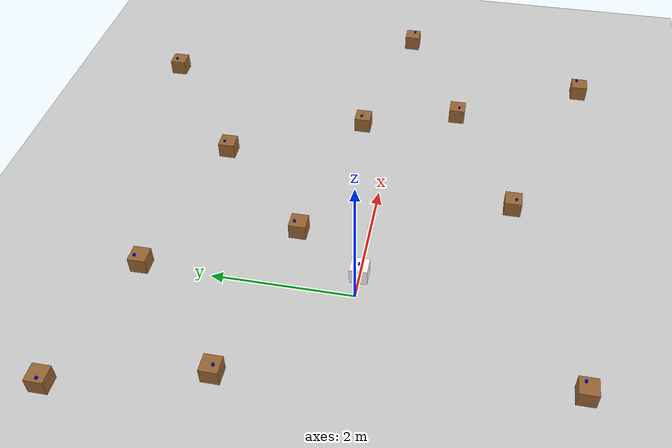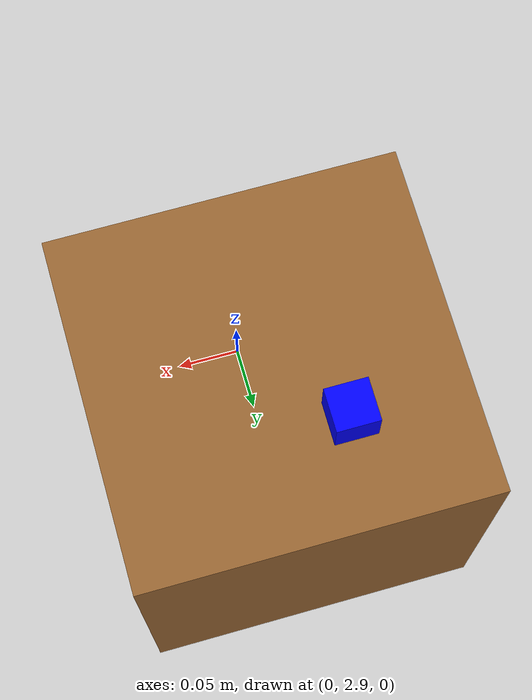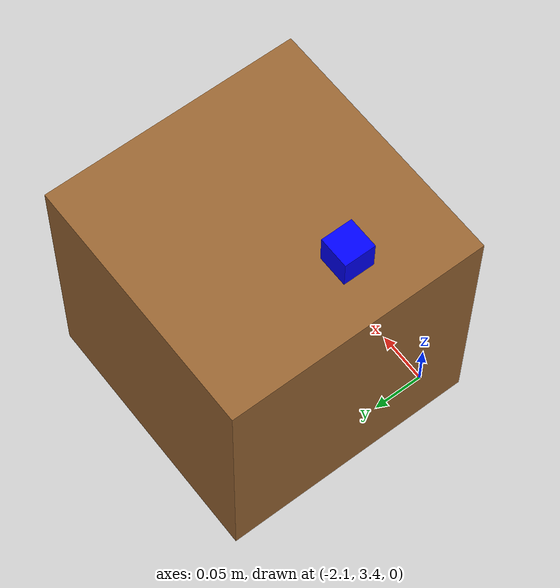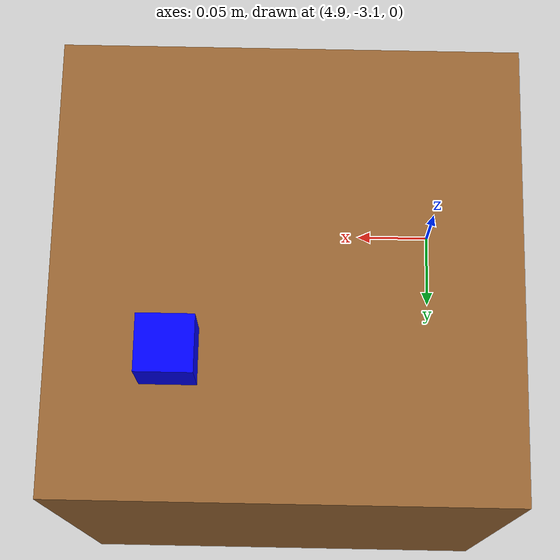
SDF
<sdf version="1.10">
 <world name="empty">
  <physics name="1ms" type="ignored">
   <max_step_size>0.001</max_step_size>
   <real_time_factor>1</real_time_factor>
   <real_time_update_rate>1000</real_time_update_rate>
  </physics>
  <plugin name="gz::sim::systems::Physics" filename="gz-sim-physics-system"/>
  <plugin name="gz::sim::systems::UserCommands" filename="gz-sim-user-commands-system"/>
  <plugin name="gz::sim::systems::SceneBroadcaster" filename="gz-sim-scene-broadcaster-system"/>
  <plugin name="gz::sim::systems::Contact" filename="gz-sim-contact-system"/>
  <plugin name="gz::sim::systems::Sensors" filename="gz-sim-sensors-system">
   <render_engine>ogre2</render_engine>
  </plugin>
  <plugin name="gz::sim::systems::Imu" filename="gz-sim-imu-system"/>
  <plugin name="gz::sim::systems::NavSat" filename="gz-sim-navsat-system"/>
  <spherical_coordinates>
   <surface_model>EARTH_WGS84</surface_model>
   <world_frame_orientation>ENU</world_frame_orientation>
   <latitude_deg>47.478949999999998</latitude_deg>
   <longitude_deg>19.057784999999999</longitude_deg>
   <elevation>0</elevation>
   <heading_deg>0</heading_deg>
  </spherical_coordinates>
  <gravity>0 0 -9.8000000000000007</gravity>
  <magnetic_field>5.5644999999999998e-06 2.2875799999999999e-05 -4.2388400000000002e-05</magnetic_field>
  <atmosphere type="adiabatic"/>
  <scene>
   <ambient>0.400000006 0.400000006 0.400000006 1</ambient>
   <background>0.699999988 0.699999988 0.699999988 1</background>
   <shadows>true</shadows>
  </scene>
  <model name="ground_plane">
   <static>true</static>
   <link name="link">
    <collision name="collision">
     <geometry><plane><normal>0 0 1</normal><size>100 100</size></plane></geometry>
     <surface><friction><ode><mu>50</mu></ode></friction></surface>
    </collision>
    <visual name="visual">
     <geometry><plane><normal>0 0 1</normal><size>100 100</size></plane></geometry>
     <material>
      <ambient>0.800000012 0.800000012 0.800000012 1</ambient>
      <diffuse>0.800000012 0.800000012 0.800000012 1</diffuse>
      <specular>0.800000012 0.800000012 0.800000012 1</specular>
     </material>
    </visual>
    <inertial>
     <mass>1</mass>
     <inertia><ixx>1</ixx><ixy>0</ixy><ixz>0</ixz><iyy>1</iyy><iyz>0</iyz><izz>1</izz></inertia>
    </inertial>
   </link>
  </model>
  <light name="sun" type="directional">
   <pose>0 0 10 0 0 0</pose>
   <intensity>1</intensity>
   <direction>-0.5 0.10000000000000001 -0.90000000000000002</direction>
   <diffuse>0.800000012 0.800000012 0.800000012 1</diffuse>
   <specular>0.200000003 0.200000003 0.200000003 1</specular>
   <attenuation>
    <range>1000</range>
    <linear>0.01</linear>
    <constant>0.90000000000000002</constant>
    <quadratic>0.001</quadratic>
   </attenuation>
   <spot><inner_angle>0</inner_angle><outer_angle>0</outer_angle><falloff>0</falloff></spot>
  </light>
  <model name="box_red">
   <pose>3.5 0.5 0.125 0 0 0</pose>
   <static>true</static>
   <link name="link">
    <collision name="collision"><geometry><box><size>0.25 0.25 0.25</size></box></geometry></collision>
    <visual name="visual">
     <geometry><box><size>0.25 0.25 0.25</size></box></geometry>
     <material>
      <ambient>0.6 0.4 0.2 1</ambient>
      <diffuse>0.6 0.4 0.2 1</diffuse>
      <specular>0.1 0.1 0.1 1</specular>
     </material>
    </visual>
   </link>
  </model>
  <model name="small_blue_1">
   <pose>3.46 0.52 0.265 0 0 0</pose>
   <static>false</static>
   <inertial>
    <mass>0.05</mass>
    <inertia>
     <ixx>0.0000075</ixx>
     <ixy>0</ixy>
     <ixz>0</ixz>
     <iyy>0.0000075</iyy>
     <iyz>0</iyz>
     <izz>0.0000075</izz>
    </inertia>
   </inertial>
   <link name="link">
    <collision name="collision"><geometry><box><size>0.03 0.03 0.03</size></box></geometry></collision>
    <visual name="visual">
     <geometry><box><size>0.03 0.03 0.03</size></box></geometry>
     <material><ambient>0 0 1 1</ambient><diffuse>0 0 1 1</diffuse><specular>0.1 0.1 0.1 1</specular></material>
    </visual>
   </link>
  </model>
  <model name="box_blue">
   <pose>0.0 3.0 0.125 0 0 0</pose>
   <static>true</static>
   <link name="link">
    <collision name="collision"><geometry><box><size>0.25 0.25 0.25</size></box></geometry></collision>
    <visual name="visual">
     <geometry><box><size>0.25 0.25 0.25</size></box></geometry>
     <material>
      <ambient>0.6 0.4 0.2 1</ambient>
      <diffuse>0.6 0.4 0.2 1</diffuse>
      <specular>0.1 0.1 0.1 1</specular>
     </material>
    </visual>
   </link>
  </model>
  <model name="box_yellow">
   <pose>5.0 -3.0 0.125 0 0 0</pose>
   <static>true</static>
   <link name="link">
    <collision name="collision"><geometry><box><size>0.25 0.25 0.25</size></box></geometry></collision>
    <visual name="visual">
     <geometry><box><size>0.25 0.25 0.25</size></box></geometry>
     <material>
      <ambient>0.6 0.4 0.2 1</ambient>
      <diffuse>0.6 0.4 0.2 1</diffuse>
      <specular>0.1 0.1 0.1 1</specular>
     </material>
    </visual>
   </link>
  </model>
  <model name="box_green">
   <pose>2.0 -2.0 0.125 0 0 0</pose>
   <static>true</static>
   <link name="link">
    <collision name="collision"><geometry><box><size>0.25 0.25 0.25</size></box></geometry></collision>
    <visual name="visual">
     <geometry><box><size>0.25 0.25 0.25</size></box></geometry>
     <material>
      <ambient>0.6 0.4 0.2 1</ambient>
      <diffuse>0.6 0.4 0.2 1</diffuse>
      <specular>0.1 0.1 0.1 1</specular>
     </material>
    </visual>
   </link>
  </model>
  <model name="box_purple">
   <pose>-1.5 1.5 0.125 0 0 0</pose>
   <static>true</static>
   <link name="link">
    <collision name="collision"><geometry><box><size>0.25 0.25 0.25</size></box></geometry></collision>
    <visual name="visual">
     <geometry><box><size>0.25 0.25 0.25</size></box></geometry>
     <material>
      <ambient>0.6 0.4 0.2 1</ambient>
      <diffuse>0.6 0.4 0.2 1</diffuse>
      <specular>0.1 0.1 0.1 1</specular>
     </material>
    </visual>
   </link>
  </model>
  <model name="box_cyan">
   <pose>4.5 4.0 0.125 0 0 0</pose>
   <static>true</static>
   <link name="link">
    <collision name="collision"><geometry><box><size>0.25 0.25 0.25</size></box></geometry></collision>
    <visual name="visual">
     <geometry><box><size>0.25 0.25 0.25</size></box></geometry>
     <material>
      <ambient>0.6 0.4 0.2 1</ambient>
      <diffuse>0.6 0.4 0.2 1</diffuse>
      <specular>0.1 0.1 0.1 1</specular>
     </material>
    </visual>
   </link>
  </model>
  <model name="box_red_2">
   <pose>1.0 1.0 0.125 0 0 0</pose>
   <static>true</static>
   <link name="link">
    <collision name="collision"><geometry><box><size>0.25 0.25 0.25</size></box></geometry></collision>
    <visual name="visual">
     <geometry><box><size>0.25 0.25 0.25</size></box></geometry>
     <material>
      <ambient>0.6 0.4 0.2 1</ambient>
      <diffuse>0.6 0.4 0.2 1</diffuse>
      <specular>0.1 0.1 0.1 1</specular>
     </material>
    </visual>
   </link>
  </model>
  <model name="box_red_3">
   <pose>4.0 -1.0 0.125 0 0 0</pose>
   <static>true</static>
   <link name="link">
    <collision name="collision"><geometry><box><size>0.25 0.25 0.25</size></box></geometry></collision>
    <visual name="visual">
     <geometry><box><size>0.25 0.25 0.25</size></box></geometry>
     <material>
      <ambient>0.6 0.4 0.2 1</ambient>
      <diffuse>0.6 0.4 0.2 1</diffuse>
      <specular>0.1 0.1 0.1 1</specular>
     </material>
    </visual>
   </link>
  </model>
  <model name="box_blue_2">
   <pose>-2.0 3.5 0.125 0 0 0</pose>
   <static>true</static>
   <link name="link">
    <collision name="collision"><geometry><box><size>0.25 0.25 0.25</size></box></geometry></collision>
    <visual name="visual">
     <geometry><box><size>0.25 0.25 0.25</size></box></geometry>
     <material>
      <ambient>0.6 0.4 0.2 1</ambient>
      <diffuse>0.6 0.4 0.2 1</diffuse>
      <specular>0.1 0.1 0.1 1</specular>
     </material>
    </visual>
   </link>
  </model>
  <model name="box_blue_3">
   <pose>-1.0 -3.0 0.125 0 0 0</pose>
   <static>true</static>
   <link name="link">
    <collision name="collision"><geometry><box><size>0.25 0.25 0.25</size></box></geometry></collision>
    <visual name="visual">
     <geometry><box><size>0.25 0.25 0.25</size></box></geometry>
     <material>
      <ambient>0.6 0.4 0.2 1</ambient>
      <diffuse>0.6 0.4 0.2 1</diffuse>
      <specular>0.1 0.1 0.1 1</specular>
     </material>
    </visual>
   </link>
  </model>
  <model name="box_yellow_2">
   <pose>6.0 0.0 0.125 0 0 0</pose>
   <static>true</static>
   <link name="link">
    <collision name="collision"><geometry><box><size>0.25 0.25 0.25</size></box></geometry></collision>
    <visual name="visual">
     <geometry><box><size>0.25 0.25 0.25</size></box></geometry>
     <material>
      <ambient>0.6 0.4 0.2 1</ambient>
      <diffuse>0.6 0.4 0.2 1</diffuse>
      <specular>0.1 0.1 0.1 1</specular>
     </material>
    </visual>
   </link>
  </model>
  <model name="box_yellow_3">
   <pose>2.5 2.5 0.125 0 0 0</pose>
   <static>true</static>
   <link name="link">
    <collision name="collision"><geometry><box><size>0.25 0.25 0.25</size></box></geometry></collision>
    <visual name="visual">
     <geometry><box><size>0.25 0.25 0.25</size></box></geometry>
     <material>
      <ambient>0.6 0.4 0.2 1</ambient>
      <diffuse>0.6 0.4 0.2 1</diffuse>
      <specular>0.1 0.1 0.1 1</specular>
     </material>
    </visual>
   </link>
  </model>
  <model name="small_yellow_2">
   <pose>-0.04 3.05 0.265 0 0 0</pose>
   <static>false</static>
   <inertial>
    <mass>0.05</mass>
    <inertia>
     <ixx>0.0000075</ixx>
     <ixy>0</ixy>
     <ixz>0</ixz>
     <iyy>0.0000075</iyy>
     <iyz>0</iyz>
     <izz>0.0000075</izz>
    </inertia>
   </inertial>
   <link name="link">
    <collision name="collision"><geometry><box><size>0.03 0.03 0.03</size></box></geometry></collision>
    <visual name="visual">
     <geometry><box><size>0.03 0.03 0.03</size></box></geometry>
     <material><ambient>0 0 1 1</ambient><diffuse>0 0 1 1</diffuse><specular>0.1 0.1 0.1 1</specular></material>
    </visual>
   </link>
  </model>
  <model name="small_blue_3">
   <pose>5.06 -2.95 0.265 0 0 0</pose>
   <static>false</static>
   <inertial>
    <mass>0.05</mass>
    <inertia>
     <ixx>0.0000075</ixx>
     <ixy>0</ixy>
     <ixz>0</ixz>
     <iyy>0.0000075</iyy>
     <iyz>0</iyz>
     <izz>0.0000075</izz>
    </inertia>
   </inertial>
   <link name="link">
    <collision name="collision"><geometry><box><size>0.03 0.03 0.03</size></box></geometry></collision>
    <visual name="visual">
     <geometry><box><size>0.03 0.03 0.03</size></box></geometry>
     <material><ambient>0 0 1 1</ambient><diffuse>0 0 1 1</diffuse><specular>0.1 0.1 0.1 1</specular></material>
    </visual>
   </link>
  </model>
  <model name="small_red_4">
   <pose>1.96 -2.04 0.265 0 0 0</pose>
   <static>false</static>
   <inertial>
    <mass>0.05</mass>
    <inertia>
     <ixx>0.0000075</ixx>
     <ixy>0</ixy>
     <ixz>0</ixz>
     <iyy>0.0000075</iyy>
     <iyz>0</iyz>
     <izz>0.0000075</izz>
    </inertia>
   </inertial>
   <link name="link">
    <collision name="collision"><geometry><box><size>0.03 0.03 0.03</size></box></geometry></collision>
    <visual name="visual">
     <geometry><box><size>0.03 0.03 0.03</size></box></geometry>
     <material><ambient>0 0 1 1</ambient><diffuse>0 0 1 1</diffuse><specular>0.1 0.1 0.1 1</specular></material>
    </visual>
   </link>
  </model>
  <model name="small_blue_4">
   <pose>-1.52 1.46 0.265 0 0 0</pose>
   <static>false</static>
   <inertial>
    <mass>0.05</mass>
    <inertia>
     <ixx>0.0000075</ixx>
     <ixy>0</ixy>
     <ixz>0</ixz>
     <iyy>0.0000075</iyy>
     <iyz>0</iyz>
     <izz>0.0000075</izz>
    </inertia>
   </inertial>
   <link name="link">
    <collision name="collision"><geometry><box><size>0.03 0.03 0.03</size></box></geometry></collision>
    <visual name="visual">
     <geometry><box><size>0.03 0.03 0.03</size></box></geometry>
     <material><ambient>0 0 1 1</ambient><diffuse>0 0 1 1</diffuse><specular>0.1 0.1 0.1 1</specular></material>
    </visual>
   </link>
  </model>
  <model name="small_yellow_4">
   <pose>4.46 4.03 0.265 0 0 0</pose>
   <static>false</static>
   <inertial>
    <mass>0.05</mass>
    <inertia>
     <ixx>0.0000075</ixx>
     <ixy>0</ixy>
     <ixz>0</ixz>
     <iyy>0.0000075</iyy>
     <iyz>0</iyz>
     <izz>0.0000075</izz>
    </inertia>
   </inertial>
   <link name="link">
    <collision name="collision"><geometry><box><size>0.03 0.03 0.03</size></box></geometry></collision>
    <visual name="visual">
     <geometry><box><size>0.03 0.03 0.03</size></box></geometry>
     <material><ambient>0 0 1 1</ambient><diffuse>0 0 1 1</diffuse><specular>0.1 0.1 0.1 1</specular></material>
    </visual>
   </link>
  </model>
  <model name="small_blue_5">
   <pose>0.97 1.05 0.265 0 0 0</pose>
   <static>false</static>
   <inertial>
    <mass>0.05</mass>
    <inertia>
     <ixx>0.0000075</ixx>
     <ixy>0</ixy>
     <ixz>0</ixz>
     <iyy>0.0000075</iyy>
     <iyz>0</iyz>
     <izz>0.0000075</izz>
    </inertia>
   </inertial>
   <link name="link">
    <collision name="collision"><geometry><box><size>0.03 0.03 0.03</size></box></geometry></collision>
    <visual name="visual">
     <geometry><box><size>0.03 0.03 0.03</size></box></geometry>
     <material><ambient>0 0 1 1</ambient><diffuse>0 0 1 1</diffuse><specular>0.1 0.1 0.1 1</specular></material>
    </visual>
   </link>
  </model>
  <model name="small_yellow_5">
   <pose>3.95 -1.03 0.265 0 0 0</pose>
   <static>false</static>
   <inertial>
    <mass>0.05</mass>
    <inertia>
     <ixx>0.0000075</ixx>
     <ixy>0</ixy>
     <ixz>0</ixz>
     <iyy>0.0000075</iyy>
     <iyz>0</iyz>
     <izz>0.0000075</izz>
    </inertia>
   </inertial>
   <link name="link">
    <collision name="collision"><geometry><box><size>0.03 0.03 0.03</size></box></geometry></collision>
    <visual name="visual">
     <geometry><box><size>0.03 0.03 0.03</size></box></geometry>
     <material><ambient>0 0 1 1</ambient><diffuse>0 0 1 1</diffuse><specular>0.1 0.1 0.1 1</specular></material>
    </visual>
   </link>
  </model>
  <model name="small_blue_6">
   <pose>-2.07 3.47 0.265 0 0 0</pose>
   <static>false</static>
   <inertial>
    <mass>0.05</mass>
    <inertia>
     <ixx>0.0000075</ixx>
     <ixy>0</ixy>
     <ixz>0</ixz>
     <iyy>0.0000075</iyy>
     <iyz>0</iyz>
     <izz>0.0000075</izz>
    </inertia>
   </inertial>
   <link name="link">
    <collision name="collision"><geometry><box><size>0.03 0.03 0.03</size></box></geometry></collision>
    <visual name="visual">
     <geometry><box><size>0.03 0.03 0.03</size></box></geometry>
     <material><ambient>0 0 1 1</ambient><diffuse>0 0 1 1</diffuse><specular>0.1 0.1 0.1 1</specular></material>
    </visual>
   </link>
  </model>
  <model name="small_yellow_6">
   <pose>-0.95 -2.96 0.265 0 0 0</pose>
   <static>false</static>
   <inertial>
    <mass>0.05</mass>
    <inertia>
     <ixx>0.0000075</ixx>
     <ixy>0</ixy>
     <ixz>0</ixz>
     <iyy>0.0000075</iyy>
     <iyz>0</iyz>
     <izz>0.0000075</izz>
    </inertia>
   </inertial>
   <link name="link">
    <collision name="collision"><geometry><box><size>0.03 0.03 0.03</size></box></geometry></collision>
    <visual name="visual">
     <geometry><box><size>0.03 0.03 0.03</size></box></geometry>
     <material><ambient>0 0 1 1</ambient><diffuse>0 0 1 1</diffuse><specular>0.1 0.1 0.1 1</specular></material>
    </visual>
   </link>
  </model>
  <model name="small_blue_7">
   <pose>6.05 -0.03 0.265 0 0 0</pose>
   <static>false</static>
   <inertial>
    <mass>0.05</mass>
    <inertia>
     <ixx>0.0000075</ixx>
     <ixy>0</ixy>
     <ixz>0</ixz>
     <iyy>0.0000075</iyy>
     <iyz>0</iyz>
     <izz>0.0000075</izz>
    </inertia>
   </inertial>
   <link name="link">
    <collision name="collision"><geometry><box><size>0.03 0.03 0.03</size></box></geometry></collision>
    <visual name="visual">
     <geometry><box><size>0.03 0.03 0.03</size></box></geometry>
     <material><ambient>0 0 1 1</ambient><diffuse>0 0 1 1</diffuse><specular>0.1 0.1 0.1 1</specular></material>
    </visual>
   </link>
  </model>
  <model name="small_blue_8">
   <pose>2.46 2.54 0.265 0 0 0</pose>
   <static>false</static>
   <inertial>
    <mass>0.05</mass>
    <inertia>
     <ixx>0.0000075</ixx>
     <ixy>0</ixy>
     <ixz>0</ixz>
     <iyy>0.0000075</iyy>
     <iyz>0</iyz>
     <izz>0.0000075</izz>
    </inertia>
   </inertial>
   <link name="link">
    <collision name="collision"><geometry><box><size>0.03 0.03 0.03</size></box></geometry></collision>
    <visual name="visual">
     <geometry><box><size>0.03 0.03 0.03</size></box></geometry>
     <material><ambient>0 0 1 1</ambient><diffuse>0 0 1 1</diffuse><specular>0.1 0.1 0.1 1</specular></material>
    </visual>
   </link>
  </model>
  <model name="white_box_test">
   <pose>0.35 0.0 0.125 0 0 0</pose>
   <static>true</static>
   <link name="link">
    <collision name="collision"><geometry><box><size>0.25 0.25 0.25</size></box></geometry></collision>
    <visual name="visual">
     <geometry><box><size>0.25 0.25 0.25</size></box></geometry>
     <material><ambient>1 1 1 1</ambient><diffuse>1 1 1 1</diffuse><specular>0.3 0.3 0.3 1</specular></material>
    </visual>
   </link>
  </model>
  <model name="grasp_target_red">
   <pose>0.35 0.0 0.265 0 0 0</pose>
   <static>false</static>
   <inertial>
    <mass>0.05</mass>
    <inertia>
     <ixx>0.0000075</ixx>
     <ixy>0</ixy>
     <ixz>0</ixz>
     <iyy>0.0000075</iyy>
     <iyz>0</iyz>
     <izz>0.0000075</izz>
    </inertia>
   </inertial>
   <link name="link">
    <collision name="collision"><geometry><box><size>0.03 0.03 0.03</size></box></geometry></collision>
    <visual name="visual">
     <geometry><box><size>0.03 0.03 0.03</size></box></geometry>
     <material><ambient>0 0 1 1</ambient><diffuse>0 0 1 1</diffuse><specular>0.1 0.1 0.1 1</specular></material>
    </visual>
   </link>
  </model>
 </world>
</sdf>
